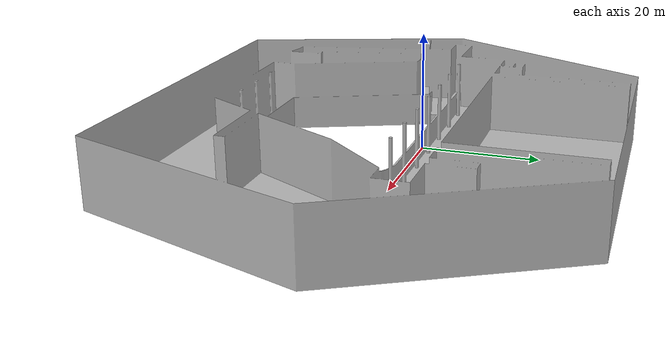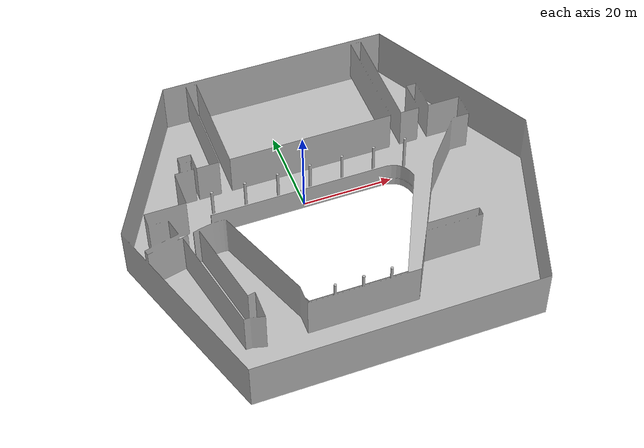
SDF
<?xml version="1.0" ?>
<sdf version="1.6">
  <world name="campus_blender">
    <include>
      <uri>model://sun</uri>
    </include>

    <physics name="default_physics" type="ode">
      <max_step_size>0.004</max_step_size>
      <real_time_factor>1.0</real_time_factor>
      <real_time_update_rate>250</real_time_update_rate>
    </physics>

    <include>
      <uri>model://campus_map</uri>
      <pose>0 0 -1 0 0 0</pose>
    </include>
  </world>
</sdf>

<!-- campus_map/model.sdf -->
<sdf version="1.6">
  <model name="campus_map">
    <static>true</static>
    <link name="campus_map_link">
      <collision name="campus_map_collision">
        <geometry>
          <mesh>
            <uri>model://campus_map/meshes/map.STL</uri>
            <scale>1 1 1</scale>
          </mesh>
        </geometry>
      </collision>
      <visual name="campus_map_visual">
        <geometry>
          <mesh>
            <uri>model://campus_map/meshes/map.obj</uri>
            <scale>1 1 1</scale>
          </mesh>
        </geometry>
      </visual>
    </link>
  </model>
</sdf>
